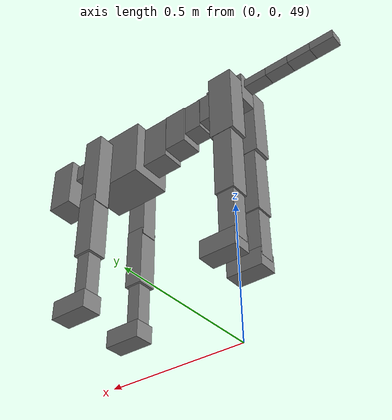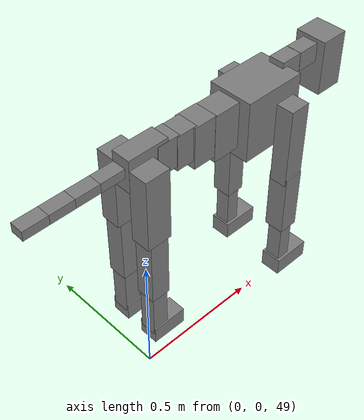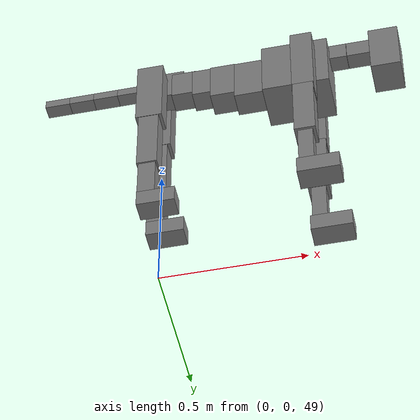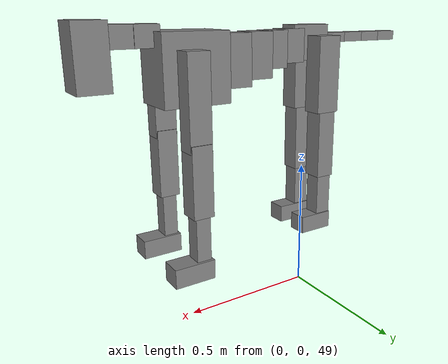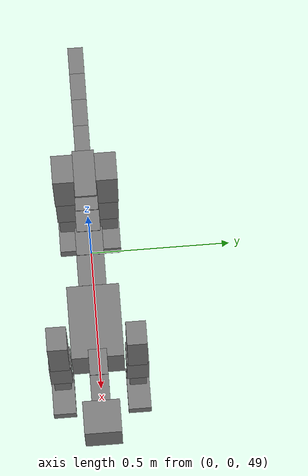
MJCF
<mujoco model="dog">

    <default>
        <joint armature="0.02" stiffness="1" damping="0.2" limited="true" />
        <geom condim="3" friction="1 0.05 0.05" margin="0.01" />
        <motor ctrllimited="true" ctrlrange="-1.0 1.0" forcelimited="true" gear="50" />
    </default>

    <compiler inertiafromgeom="true" angle="radian" />

    <option timestep="0.016" iterations="50" tolerance="1e-10" solver="Newton" jacobian="dense" cone="pyramidal" />

    <size nconmax="20000" njmax="60000" nstack="5000000" />
    <visual>
        <map force="0.1" zfar="30" />
        <rgba haze="0.15 0.25 0.35 1" />
        <quality shadowsize="2048" />
        <global offwidth="800" offheight="800" />
    </visual>

    <asset>
        <texture type="skybox" builtin="gradient" rgb1="0.3 0.5 0.7" rgb2="0 0 0" width="512" height="512" />
        <texture name="texplane" type="2d" builtin="checker" rgb1=".2 .3 .4" rgb2=".1 0.15 0.2" width="512" height="512" mark="cross" markrgb=".8 .8 .8" />
        <texture name="texgeom" type="cube" builtin="flat" mark="cross" width="127" height="1278" rgb1="0.8 0.6 0.4" rgb2="0.8 0.6 0.4" markrgb="1 1 1" random="0.01" />

        <material name="matplane" reflectance="0.3" texture="texplane" texrepeat="1 1" texuniform="true" />
        <material name="matgeom" texture="texgeom" texuniform="true" rgba="0.8 0.6 .4 1" />
    </asset>

    <worldbody>
        <geom name="floor" pos="0 0 0" size="0 0 .25" type="plane" material="matplane" condim="3" />

        <light directional="false" diffuse=".2 .2 .2" specular="0 0 0" pos="0 0 5" dir="0 0 -1" castshadow="false" />
        <light mode="targetbodycom" target="torso" directional="false" diffuse=".8 .8 .8" specular="0.3 0.3 0.3" pos="0 0 4.0" dir="0 0 -1" />

        <body name="root" pos="0 0 50">
            <freejoint name="root_1" />
            <geom type="box" pos="0 0 -0.02" size="0.0774  0.0358  0.063" density="2030" />

            <body name="spine1" pos="0.054 0 0">
                <joint name="spine1_y" axis="0 1 0" range="0 0.7" limited="true" />
                <geom type="box" pos="0.02375 0 -0.03" size="0.04375  0.0375  0.05985" density="2030" />

                <body name="spine2" pos="0.0612 0 0">
                    <joint name="spine2_y" axis="0 1 0" range="-0.15 0.15" limited="true" />
                    <geom type="box" pos="0.03555  0  -0.04" size="0.04055  0.039  0.06615" density="2030" />

                    <body name="spine3" pos="0.0730 0 0">
                        <joint name="spine3_y" axis="0 1 0" range="-0.15 0.15" limited="true" />
                        <geom type="box" pos="0.03555  0  -0.057" size="0.04555  0.0445  0.081" density="2030" />

                        <body name="spine4" pos="0.0780 0 0">
                            <joint name="spine4_y" axis="0 1 0" range="-0.15 0.15" limited="true" />
                            <geom type="box" pos="0.05265  0  -0.07" size="0.05265  0.045  0.09135" density="2030" />

                            <body name="torso" pos="0.1082 0 0">
                                <joint name="torso_y" axis="0 1 0" range="-0.15 0.15" limited="true" />
                                <geom type="box" pos="0.11925  0  -0.085" size="0.11925  0.085  0.11745" density="2030" />

                                <body name="neck1" pos="0.2160  0   0.0180">
                                    <joint name="neck1_y" axis="0 1 0" range="-1.2  -1" limited="true" />
                                    <geom type="box" pos="0.0423  0  0" size="0.0423  0.03  0.036" density="2325" />

                                    <body name="neck2" pos="0.0853  0  0">
                                        <joint name="neck2_y" axis="0 1 0" range="0.1  0" limited="true" />
                                        <geom type="box" pos="0.0423  0  0" size="0.0423  0.03  0.036" density="2325" />

                                        <body name="head" pos="0.0853  0  0">
                                            <joint name="head_y" axis="0 1 0" range="-0.3  -0.2" limited="true" />
                                            <geom type="box" pos="0.0531  0  -0.055" size="0.0531  0.06  0.1044" density="4030" />

                                        </body>
                                    </body>
                                </body>

                                <body name="front_shoulder" pos="0.156  0   -0.0480">
                                    <joint name="front_shoulder_y" axis="0 1 0" range="-1 1.5" limited="true" />
                                    <geom type="box" pos="0 0.13 -0.1300" size="0.0389  0.0332  0.1566" density="1158" />
                                    <geom type="box" pos="0 -0.13 -0.1300" size="0.0389  0.0332  0.1566" density="1158" />

                                    <body name="front_elbow" pos="0  0  -0.2600">
                                        <joint name="front_elbow_y" axis="0 1 0" range="-2 0" limited="true" />
                                        <geom type="box" pos="0 0.13 -0.1219" size="0.0365  0.0373  0.1219" density="1081" />
                                        <geom type="box" pos="0 -0.13 -0.1219" size="0.0365  0.0373  0.1219" density="1081" />

                                        <body name="front_wrist" pos="0  0  -0.2438">
                                            <joint name="front_wrist_y" axis="0 1 0" range="-0.2 0" limited="true" />
                                            <geom type="box" pos="0 0.13 -0.0846" size="0.0260  0.0289  0.0977" density="1664" />
                                            <geom type="box" pos="0 -0.13 -0.0846" size="0.0260  0.0289  0.0977" density="1664" />

                                            <body name="front_finger_end" pos="0  0  -0.1691">
                                                <joint name="front_finger_y" axis="0 1 0" range="-0.4 1" limited="true" />
                                                <geom type="box" pos="0.0393  0.13  -0.0188" size="0.0721  0.0393  0.0338" density="1515" />
                                                <geom type="box" pos="0.0393  -0.13  -0.0188" size="0.0721  0.0393  0.0338" density="1515" />

                                            </body>

                                        </body>
                                    </body>
                                </body>

                            </body>
                        </body>
                    </body>
                </body>
            </body>

            <body name="back_hip" pos="-0.03 0 -0.018">
                <joint name="back_hip_y" axis="0 1 0" range="-1.5 0.3" limited="true" />
                <geom type="box" pos="0 0.07 -0.1162" size="0.0471  0.0369  0.1390" density="1154" />
                <geom type="box" pos="0 -0.07 -0.1162" size="0.0471  0.0369  0.1390" density="1154" />

                <body name="back_knee" pos="0  0  -0.2324">
                    <joint name="back_knee_y" axis="0 1 0" range="0 2.8" limited="true" />
                    <geom type="box" pos="0 0.07 -0.1281" size="0.0361  0.0356  0.1437" density="1227" />
                    <geom type="box" pos="0 -0.07 -0.1281" size="0.0361  0.0356  0.1437" density="1227" />

                    <body name="back_ankle" pos="0  0  -0.2563">
                        <joint name="back_ankle_y" axis="0 1 0" range="-2.2 0" limited="true" />
                        <geom type="box" pos="0 0.07 -0.0908" size="0.0305  0.0305  0.1021" density="1284" />
                        <geom type="box" pos="0 -0.07 -0.0908" size="0.0305  0.0305  0.1021" density="1284" />

                        <body name="back_toe_end" pos="0  0  -0.1816">
                            <joint name="back_toe_y" axis="0 1 0" range="-0.4 1" limited="true" />
                            <geom type="box" pos="0.0360  0.07  -0.0172" size="0.0661  0.0360  0.0322" density="1515" />
                            <geom type="box" pos="0.0360  -0.07  -0.0172" size="0.0661  0.0360  0.0322" density="1515" />

                        </body>
                    </body>
                </body>
            </body>

            <body name="tail1" pos="-0.074 0 -0.006">
                <joint name="tail1_y" axis="0 1 0" range="-0.2 0.2" limited="true" />
                <geom type="box" pos="-0.0536  0  0" size="0.045  0.025  0.0175" density="1587" />

                <body name="tail2" pos="-0.09 0 0">
                    <joint name="tail2_y" axis="0 1 0" range="-0.2 0.2" limited="true" />
                    <geom type="box" pos="-0.0536  0  0" size="0.045  0.025  0.0175" density="1587" />

                    <body name="tail3" pos="-0.09 0 0">
                        <joint name="tail3_y" axis="0 1 0" range="-0.2 0.2" limited="true" />
                        <geom type="box" pos="-0.0536  0  0" size="0.045  0.025  0.0175" density="1587" />

                        <body name="tail4" pos="-0.09 0 0">
                            <joint name="tail4_y" axis="0 1 0" range="-0.2 0.2" limited="true" />
                            <geom type="box" pos="-0.0536  0  0" size="0.045  0.025  0.0175" density="1587" />

                        </body>
                    </body>
                </body>
            </body>
        </body>
    </worldbody>

    <actuator>
        <motor joint="spine1_y" forcerange="-150 150     " />
        <motor joint="spine2_y" forcerange="-150 150     " />
        <motor joint="spine3_y" forcerange="-150 150     " />
        <motor joint="spine4_y" forcerange="-150 150     " />
        <motor joint="torso_y" forcerange="-150 150     " />
        <motor joint="neck1_y" forcerange="-100 100       " />
        <motor joint="neck2_y" forcerange="-100 100       " />
        <motor joint="head_y" forcerange="-150 150       " />
        <motor joint="front_shoulder_y" forcerange="-153.46 168.00" />
        <motor joint="front_elbow_y" forcerange="-184.87 186.50" />
        <motor joint="front_wrist_y" forcerange="-122.68 108.58" />
        <motor joint="front_finger_y" forcerange="-88.88 80.84" />
        <motor joint="back_hip_y" forcerange="-386.64 305.43" />
        <motor joint="back_knee_y" forcerange="-397.55 320.00" />
        <motor joint="back_angle_y" forcerange="-235.58 151.85" />
        <motor joint="back_toe_y" forcerange="-80.70 127.62" />
        <motor joint="tail1_y" forcerange="-50 50     " />
        <motor joint="tail2_y" forcerange="-50 50     " />
        <motor joint="tail3_y" forcerange="-50 50     " />
        <motor joint="tail4_y" forcerange="-50 50     " />
    </actuator>
</mujoco>
